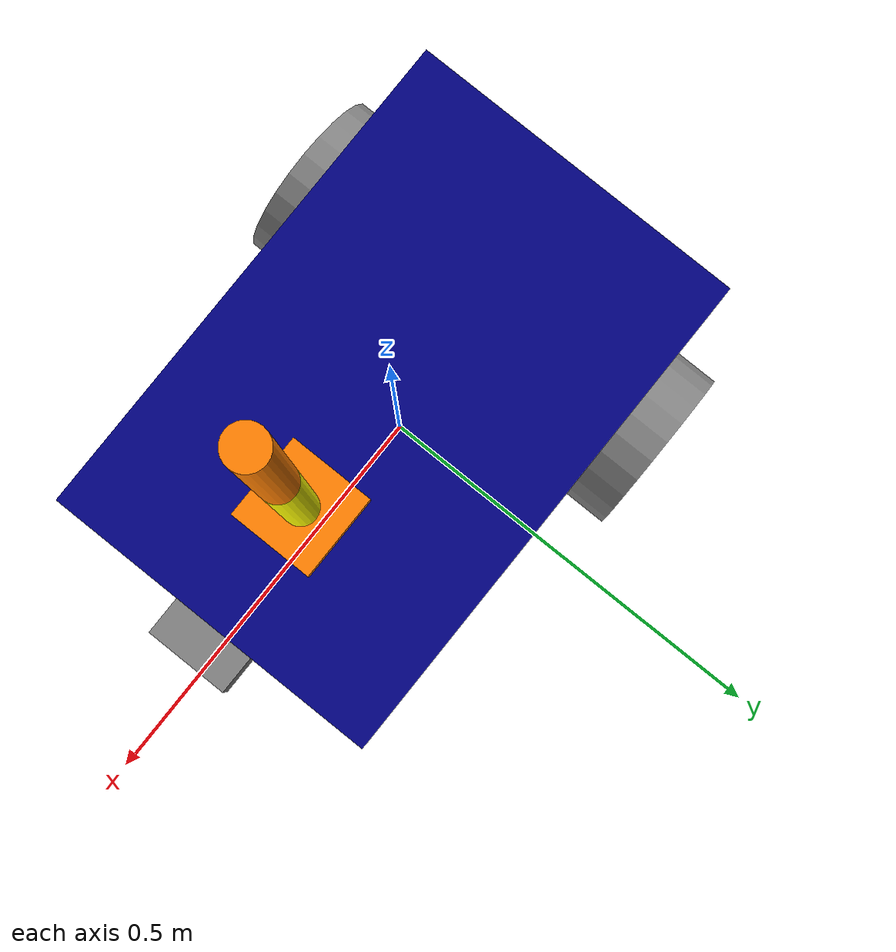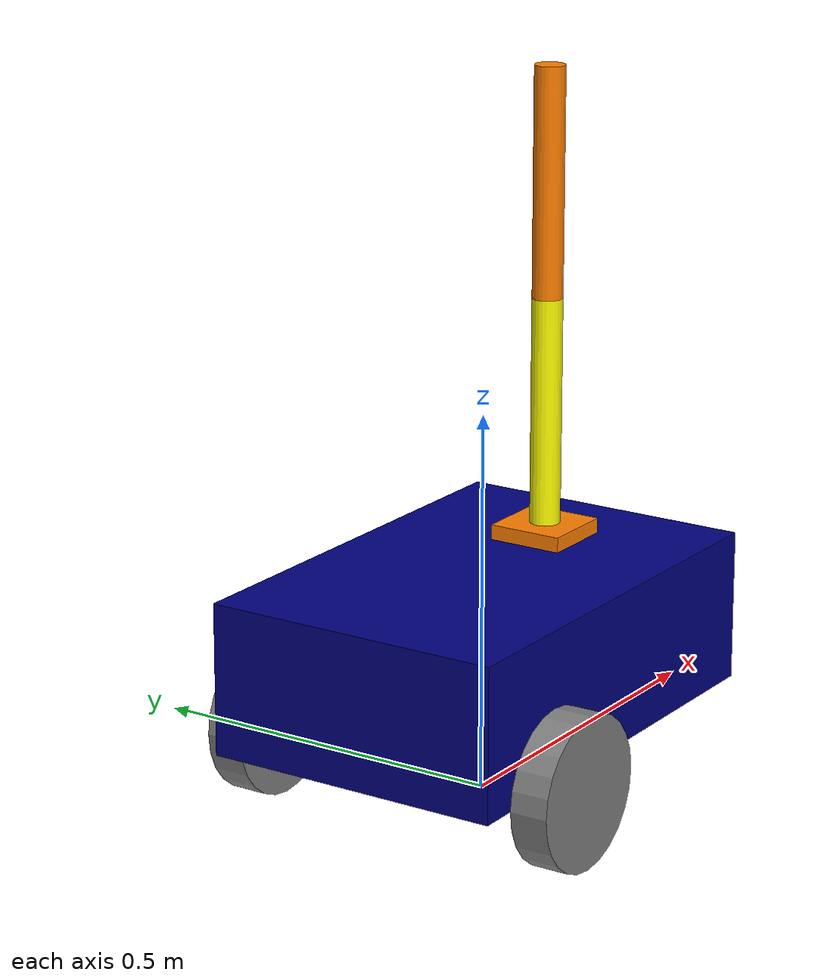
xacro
<?xml version="1.0"?>
<robot name="my_robot"
    xmlns:xacro="http://www.ros.org/wiki/xacro">

    <xacro:include filename="common_properties.xacro" />
    <xacro:include filename="mobile_base.xacro" />
    <xacro:include filename="mobile_base_gazebo.xacro" />
    <xacro:include filename="camera.xacro" />
    <xacro:include filename="arm.xacro" />

</robot>

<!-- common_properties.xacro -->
<robot xmlns:xacro="http://www.ros.org/wiki/xacro">

    <material name="blue">
        <color rgba="0 0 0.5 1" />
    </material>

    <material name="grey">
        <color rgba="0.5 0.5 0.5 1" />
    </material>

    <material name="yellow">
        <color rgba="1 1 0 1" />
    </material>

    <material name="orange">
        <color rgba="1 0.5 0 1" />
    </material>

    <xacro:macro name="box_inertia" params="m x y z o_xyz o_rpy">
        <inertial>
            <mass value="${m}" />
            <origin xyz="${o_xyz}" rpy="${o_rpy}" />
            <inertia ixx="${(m/12) * (y*y + z*z)}" ixy="0" ixz="0" iyy="${(m/12) * (x*x + z*z)}" iyz="0" izz="${(m/12) * (x*x + y*y)}" />
        </inertial>
    </xacro:macro>

    <xacro:macro name="cylinder_inertia" params="m r l o_xyz o_rpy">
        <inertial>
            <mass value="${m}" />
            <origin xyz="${o_xyz}" rpy="${o_rpy}" />
            <inertia ixx="${(m/12) * (3*r*r + l*l)}" ixy="0" ixz="0" iyy="${(m/12) * (3*r*r + l*l)}" iyz="0" izz="${(m/2) * (r*r)}" />
        </inertial>
    </xacro:macro>

    <xacro:macro name="sphere_inertia" params="m r o_xyz o_rpy">
        <inertial>
            <mass value="${m}" />
            <origin xyz="${o_xyz}" rpy="${o_rpy}" />
            <inertia ixx="${(2/5) * m * r * r}" ixy="0" ixz="0" iyy="${(2/5) * m * r * r}" iyz="0" izz="${(2/5) * m * r * r}" />
        </inertial>
    </xacro:macro>

</robot>

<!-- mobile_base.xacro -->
<robot xmlns:xacro="http://www.ros.org/wiki/xacro">

    <xacro:property name="base_length" value="0.6" />
    <xacro:property name="base_width" value="0.4" />
    <xacro:property name="base_height" value="0.2" />
    <xacro:property name="wheel_radius" value="0.1" />
    <xacro:property name="wheel_length" value="0.05" />

    <link name="base_footprint" />

    <link name="base_link">
        <visual>
            <geometry>
                <box size="${base_length} ${base_width} ${base_height}" />
            </geometry>
            <origin xyz="0 0 ${base_height / 2.0}" rpy="0 0 0" />
            <material name="blue" />
        </visual>
        <collision>
            <geometry>
                <box size="${base_length} ${base_width} ${base_height}" />
            </geometry>
            <origin xyz="0 0 ${base_height / 2.0}" rpy="0 0 0" />
        </collision>
        <xacro:box_inertia m="5.0" x="${base_length}" y="${base_width}" z="${base_height}"
                           o_xyz="0 0 ${base_height / 2.0}" o_rpy="0 0 0" />
    </link>

    <xacro:macro name="wheel_link" params="prefix">
        <link name="${prefix}_wheel_link">
            <visual>
                <geometry>
                    <cylinder radius="${wheel_radius}" length="${wheel_length}" />
                </geometry>
                <origin xyz="0 0 0" rpy="${pi / 2.0} 0 0" />
                <material name="grey" />
            </visual>
            <collision>
                <geometry>
                    <cylinder radius="${wheel_radius}" length="${wheel_length}" />
                </geometry>
                <origin xyz="0 0 0" rpy="${pi / 2.0} 0 0" />
            </collision>
            <xacro:cylinder_inertia m="1.0" r="${wheel_radius}" l="${wheel_length}"
                                    o_xyz="0 0 0" o_rpy="${pi / 2.0} 0 0" />
        </link>
    </xacro:macro>

    <xacro:wheel_link prefix="right" />
    <xacro:wheel_link prefix="left" />

    <link name="caster_wheel_link">
        <visual>
            <geometry>
                <sphere radius="${wheel_radius / 2.0}" />
            </geometry>
            <origin xyz="0 0 0" rpy="0 0 0" />
            <material name="grey" />
        </visual>
        <collision>
            <geometry>
                <sphere radius="${wheel_radius / 2.0}" />
            </geometry>
            <origin xyz="0 0 0" rpy="0 0 0" />
        </collision>
        <xacro:sphere_inertia m="0.5" r="${wheel_radius / 2.0}"
                              o_xyz="0 0 0" o_rpy="0 0 0" />
    </link>

    <joint name="base_joint" type="fixed">
        <parent link="base_footprint" />
        <child link="base_link" />
        <origin xyz="0 0 ${wheel_radius}" rpy="0 0 0"/>
    </joint>

    <joint name="base_right_wheel_joint" type="continuous">
        <parent link="base_link" />
        <child link="right_wheel_link" />
        <origin xyz="${-base_length / 4.0} ${-(base_width + wheel_length) / 2.0} 0" rpy="0 0 0" />
        <axis xyz="0 1 0" />
    </joint>

    <joint name="base_left_wheel_joint" type="continuous">
        <parent link="base_link" />
        <child link="left_wheel_link" />
        <origin xyz="${-base_length / 4.0} ${(base_width + wheel_length) / 2.0} 0" rpy="0 0 0" />
        <axis xyz="0 1 0" />
    </joint>

    <joint name="base_caster_wheel_joint" type="fixed">
        <parent link="base_link" />
        <child link="caster_wheel_link" />
        <origin xyz="${base_length / 3.0} 0 ${-wheel_radius / 2.0}" rpy="0 0 0" />
    </joint>

</robot>

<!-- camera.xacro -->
<robot xmlns:xacro="http://www.ros.org/wiki/xacro">

    <xacro:property name="camera_length" value="0.05" />
    <xacro:property name="camera_width" value="0.1" />
    <xacro:property name="camera_height" value="0.05" />

    <link name="camera_link">
        <visual>
            <geometry>
                <box size="${camera_length} ${camera_width} ${camera_height}" />
            </geometry>
            <material name="grey" />
        </visual>
        <collision>
            <geometry>
                <box size="${camera_length} ${camera_width} ${camera_height}" />
            </geometry>
        </collision>
        <xacro:box_inertia m="0.1" x="${camera_length}" y="${camera_width}" z="${camera_height}" o_xyz="0 0 0" o_rpy="0 0 0" />
    </link>

    <joint name="base_camera_joint" type="fixed">
        <parent link="base_link" />
        <child link="camera_link" />
        <origin xyz="${(base_length + camera_length )/ 2.0} 0 ${base_height / 2.0}" rpy="0 0 0" />
    </joint>

    <link name="camera_link_optical" />

    <!-- OpenCVs axes are different from Gazebo's axes. So use a dummy joint to convert the axes. -->
    <joint name="camera_optical_joint" type="fixed">
        <parent link="camera_link" />
        <child link="camera_link_optical" />
        <origin xyz="0 0 0" rpy="${-pi/2} 0 ${-pi/2}" />
    </joint>

    <gazebo>
        <plugin filename="gz-sim-sensors-system" name="gz::sim::systems::Sensors">
            <render_engine>ogre</render_engine>
        </plugin>
    </gazebo>

    <gazebo reference="camera_link">
        <sensor type="camera" name="camera">
            <camera>
                <horizontal_fov>1.3962634</horizontal_fov>
                <image>
                    <width>640</width>
                    <height>480</height>
                    <format>R8G8B8</format>
                </image>
                <clip>
                    <near>0.1</near>
                    <far>15</far>
                </clip>
                <noise>
                    <type>gaussian</type>
                    <mean>0.0</mean>
                    <stddev>0.007</stddev>
                </noise>
                <optical_frame_id>camera_link_optical</optical_frame_id>
                <camera_info_topic>camera/camera_info</camera_info_topic>
            </camera>
            <always_on>1</always_on>
            <update_rate>20</update_rate>
            <visualize>true</visualize>
            <topic>camera/image_raw</topic>

        </sensor>
    </gazebo>
</robot>

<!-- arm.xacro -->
<robot xmlns:xacro="http://www.ros.org/wiki/xacro">

    <xacro:property name="arm_base_length" value="0.1" />
    <xacro:property name="arm_base_width" value="0.1" />
    <xacro:property name="arm_base_height" value="0.02" />

    <xacro:property name="forearm_radius" value="0.02" />
    <xacro:property name="forearm_length" value="0.3" />

    <xacro:property name="hand_radius" value="0.02" />
    <xacro:property name="hand_length" value="0.3" />

    <link name="arm_base">
        <visual>
            <geometry>
                <box size="${arm_base_length} ${arm_base_width} ${arm_base_height}" />
            </geometry>
            <material name="orange" />
        </visual>
        <collision>
            <geometry>
                <box size="${arm_base_length} ${arm_base_width} ${arm_base_height}" />
            </geometry>
        </collision>
        <xacro:box_inertia m="0.1" x="${arm_base_length}" y="${arm_base_width}" z="${arm_base_height}" o_xyz="0 0 0" o_rpy="0 0 0" />
    </link>

    <link name="forearm">
        <visual>
            <geometry>
                <cylinder radius="${forearm_radius}" length="${forearm_length}" />
            </geometry>
            <material name="yellow" />
            <origin xyz="0 0 ${forearm_length / 2.0}" rpy="0 0 0" />
        </visual>
        <collision>
            <geometry>
                <cylinder radius="${forearm_radius}" length="${forearm_length}" />
            </geometry>
        </collision>
        <xacro:cylinder_inertia m="0.3" r="${forearm_radius}" l="${forearm_length}" o_xyz="0 0 0" o_rpy="0 0 0" />
    </link>

    <link name="hand">
        <visual>
            <geometry>
                <cylinder radius="${hand_radius}" length="${hand_length}" />
            </geometry>
            <material name="orange" />
            <origin xyz="0 0 ${hand_length / 2.0}" rpy="0 0 0" />
        </visual>
        <collision>
            <geometry>
                <cylinder radius="${hand_radius}" length="${hand_length}" />
            </geometry>
        </collision>
        <xacro:cylinder_inertia m="0.3" r="${hand_radius}" l="${hand_length}" o_xyz="0 0 0" o_rpy="0 0 0" />
    </link>

    <joint name="base_arm_joint" type="fixed">
        <parent link="base_link" />
        <child link="arm_base" />
        <origin xyz="${base_length / 4.0} 0 ${ base_height + (arm_base_height / 2.0)}" rpy="0 0 0" />
    </joint>

    <joint name="arm_base_forearm_joint" type="revolute">
        <parent link="arm_base" />
        <child link="forearm" />
        <origin xyz="0 0 ${arm_base_height/2}" rpy="0 0 0" />
        <axis xyz="0 1 0" />
        <limit lower="0" upper="${pi/2}" velocity="100" effort="100" />
        <dynamics damping="0.3" friction="0.3" />
    </joint>

    <joint name="forearm_hand_joint" type="revolute">
        <parent link="forearm" />
        <child link="hand" />
        <origin xyz="0 0 ${forearm_length}" rpy="0 0 0" />
        <axis xyz="0 1 0" />
        <limit lower="0" upper="${pi/2}" velocity="100" effort="100" />
        <dynamics damping="0.3" friction="0.3" />
    </joint>

    <gazebo>
        <plugin filename="gz-sim-joint-state-publisher-system" name="gz::sim::systems::JointStatePublisher">
            <joint_name>arm_base_forearm_joint</joint_name>
            <joint_name>forearm_hand_joint</joint_name>
        </plugin>
    </gazebo>

    <gazebo>
        <plugin filename="gz-sim-joint-position-controller-system" name="gz::sim::systems::JointPositionController">
            <joint_name>arm_base_forearm_joint</joint_name>
            <p_gain>5</p_gain>
        </plugin>
    </gazebo>
    <gazebo>
        <plugin filename="gz-sim-joint-position-controller-system" name="gz::sim::systems::JointPositionController">
            <joint_name>forearm_hand_joint</joint_name>
            <p_gain>3</p_gain>
        </plugin>
    </gazebo>

</robot>
